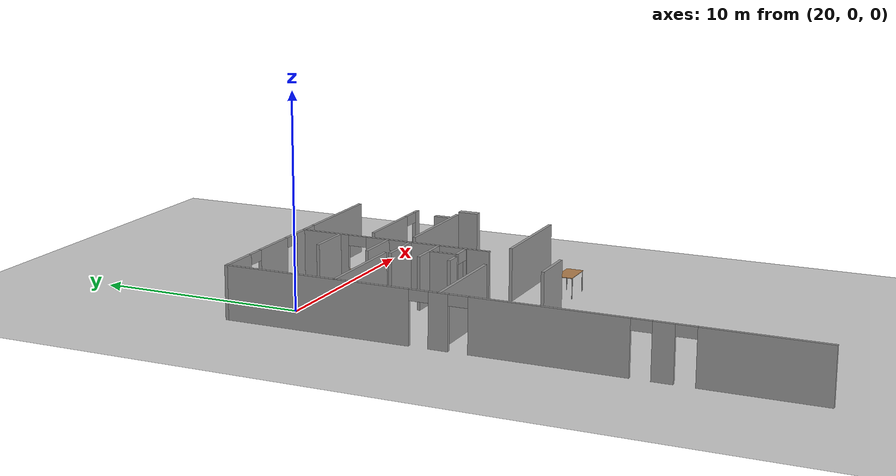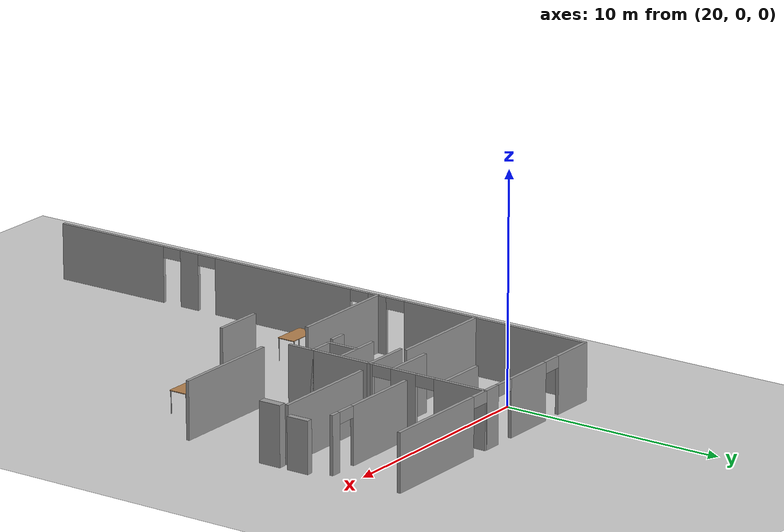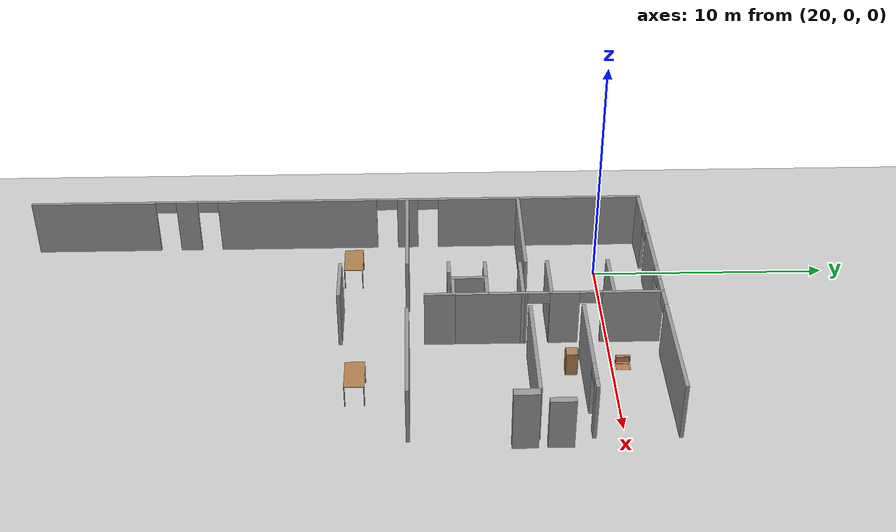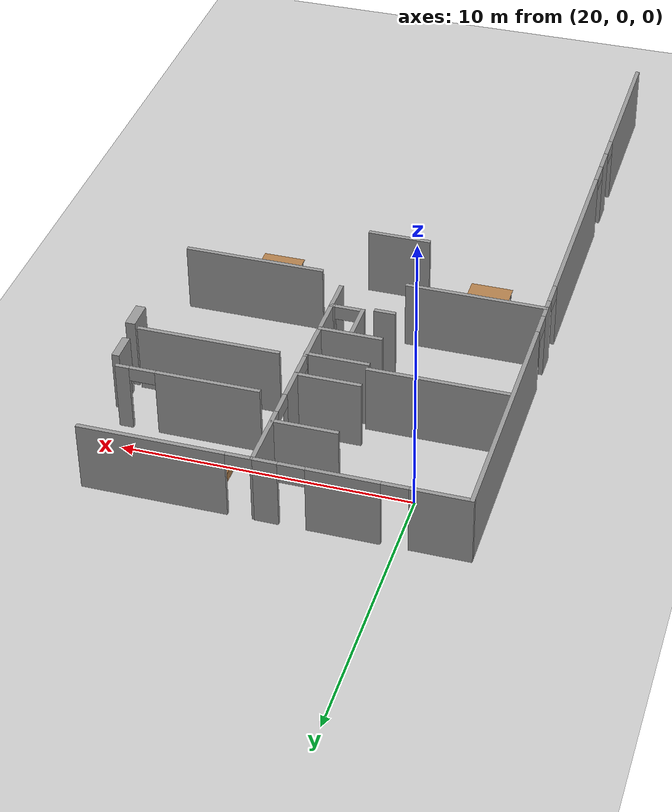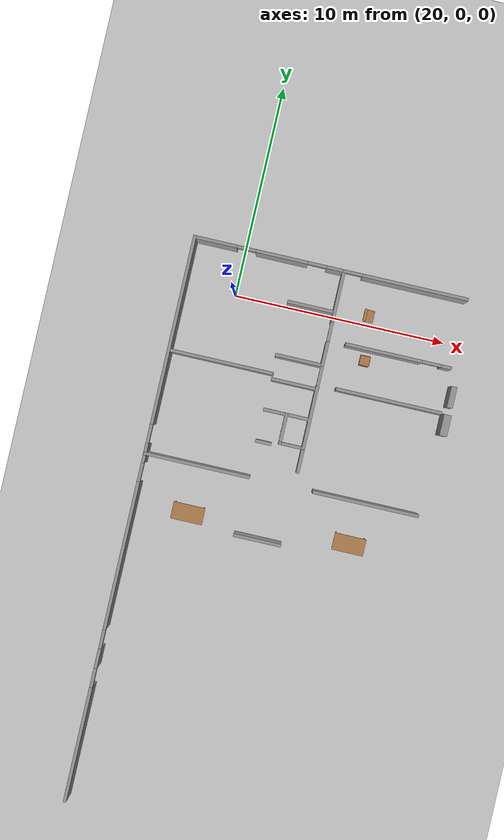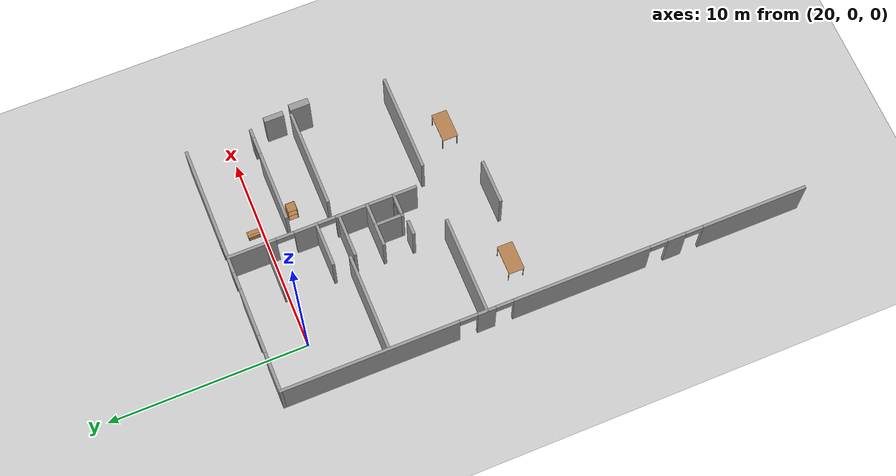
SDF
<sdf version="1.6">
 <world name="default">
  <model name="ground_plane">
   <static>1</static>
   <link name="link">
    <collision name="collision">
     <geometry><plane><normal>0 0 1</normal><size>100 100</size></plane></geometry>
     <surface><friction><ode><mu>100</mu><mu2>50</mu2></ode></friction></surface>
    </collision>
    <visual name="visual">
     <cast_shadows>0</cast_shadows>
     <geometry><plane><normal>0 0 1</normal><size>100 100</size></plane></geometry>
     <material>
      <script><uri>file://media/materials/scripts/gazebo.material</uri><name>Gazebo/Grey</name></script>
     </material>
    </visual>
   </link>
  </model>
  <model name="fin_se1f1.sdf">
   <pose>1.8125 -2.2901 0 0 -0 0</pose>
   <link name="Wall_163">
    <pose>22.2268 4.38596 0 0 -0 3.14159</pose>
    <visual name="Wall_163_Visual_0">
     <pose>-4.00766 0 1.25 0 -0 0</pose>
     <geometry><box><size>4.98467 0.15 2.5</size></box></geometry>
     <material>
      <script><uri>file://media/materials/scripts/gazebo.material</uri><name>Gazebo/Grey</name></script>
      <ambient>1 1 1 1</ambient>
     </material>
     <meta><layer>0</layer></meta>
    </visual>
    <collision name="Wall_163_Collision_0">
     <geometry><box><size>4.98467 0.15 2.5</size></box></geometry>
     <pose>-4.00766 0 1.25 0 -0 0</pose>
    </collision>
    <visual name="Wall_163_Visual_1">
     <pose>-0.2105 0 1.25 0 -0 0</pose>
     <geometry><box><size>0.809654 0.15 2.5</size></box></geometry>
     <material>
      <script><uri>file://media/materials/scripts/gazebo.material</uri><name>Gazebo/Grey</name></script>
      <ambient>1 1 1 1</ambient>
     </material>
     <meta><layer>0</layer></meta>
    </visual>
    <collision name="Wall_163_Collision_1">
     <geometry><box><size>0.809654 0.15 2.5</size></box></geometry>
     <pose>-0.2105 0 1.25 0 -0 0</pose>
    </collision>
    <visual name="Wall_163_Visual_2">
     <pose>2.31375 0 1.25 0 -0 0</pose>
     <geometry><box><size>2.43885 0.15 2.5</size></box></geometry>
     <material>
      <script><uri>file://media/materials/scripts/gazebo.material</uri><name>Gazebo/Grey</name></script>
      <ambient>1 1 1 1</ambient>
     </material>
     <meta><layer>0</layer></meta>
    </visual>
    <collision name="Wall_163_Collision_2">
     <geometry><box><size>2.43885 0.15 2.5</size></box></geometry>
     <pose>2.31375 0 1.25 0 -0 0</pose>
    </collision>
    <visual name="Wall_163_Visual_3">
     <pose>5.46659 0 1.25 0 -0 0</pose>
     <geometry><box><size>2.06682 0.15 2.5</size></box></geometry>
     <material>
      <script><uri>file://media/materials/scripts/gazebo.material</uri><name>Gazebo/Grey</name></script>
      <ambient>1 1 1 1</ambient>
     </material>
     <meta><layer>0</layer></meta>
    </visual>
    <collision name="Wall_163_Collision_3">
     <geometry><box><size>2.06682 0.15 2.5</size></box></geometry>
     <pose>5.46659 0 1.25 0 -0 0</pose>
    </collision>
    <visual name="Wall_163_Visual_4">
     <pose>-1.06533 0 2.25 0 -0 0</pose>
     <geometry><box><size>0.9 0.15 0.5</size></box></geometry>
     <material>
      <script><uri>file://media/materials/scripts/gazebo.material</uri><name>Gazebo/Grey</name></script>
      <ambient>1 1 1 1</ambient>
     </material>
     <meta><layer>0</layer></meta>
    </visual>
    <collision name="Wall_163_Collision_4">
     <geometry><box><size>0.9 0.15 0.5</size></box></geometry>
     <pose>-1.06533 0 2.25 0 -0 0</pose>
    </collision>
    <visual name="Wall_163_Visual_5">
     <pose>0.644327 0 2.25 0 -0 0</pose>
     <geometry><box><size>0.9 0.15 0.5</size></box></geometry>
     <material>
      <script><uri>file://media/materials/scripts/gazebo.material</uri><name>Gazebo/Grey</name></script>
      <ambient>1 1 1 1</ambient>
     </material>
     <meta><layer>0</layer></meta>
    </visual>
    <collision name="Wall_163_Collision_5">
     <geometry><box><size>0.9 0.15 0.5</size></box></geometry>
     <pose>0.644327 0 2.25 0 -0 0</pose>
    </collision>
    <visual name="Wall_163_Visual_6">
     <pose>3.98318 0 2.25 0 -0 0</pose>
     <geometry><box><size>0.9 0.15 0.5</size></box></geometry>
     <material>
      <script><uri>file://media/materials/scripts/gazebo.material</uri><name>Gazebo/Grey</name></script>
      <ambient>1 1 1 1</ambient>
     </material>
     <meta><layer>0</layer></meta>
    </visual>
    <collision name="Wall_163_Collision_6">
     <geometry><box><size>0.9 0.15 0.5</size></box></geometry>
     <pose>3.98318 0 2.25 0 -0 0</pose>
    </collision>
   </link>
   <link name="Wall_164">
    <pose>15.8018 -8.91404 0 0 0 -1.5708</pose>
    <visual name="Wall_164_Visual_0">
     <pose>-8.91283 0 1.25 0 -0 0</pose>
     <geometry><box><size>8.92434 0.15 2.5</size></box></geometry>
     <material>
      <script><uri>file://media/materials/scripts/gazebo.material</uri><name>Gazebo/Grey</name></script>
      <ambient>1 1 1 1</ambient>
     </material>
     <meta><layer>0</layer></meta>
    </visual>
    <collision name="Wall_164_Collision_0">
     <geometry><box><size>8.92434 0.15 2.5</size></box></geometry>
     <pose>-8.91283 0 1.25 0 -0 0</pose>
    </collision>
    <visual name="Wall_164_Visual_1">
     <pose>-3.09555 0 1.25 0 -0 0</pose>
     <geometry><box><size>0.910221 0.15 2.5</size></box></geometry>
     <material>
      <script><uri>file://media/materials/scripts/gazebo.material</uri><name>Gazebo/Grey</name></script>
      <ambient>1 1 1 1</ambient>
     </material>
     <meta><layer>0</layer></meta>
    </visual>
    <collision name="Wall_164_Collision_1">
     <geometry><box><size>0.910221 0.15 2.5</size></box></geometry>
     <pose>-3.09555 0 1.25 0 -0 0</pose>
    </collision>
    <visual name="Wall_164_Visual_2">
     <pose>1.75182 0 1.25 0 -0 0</pose>
     <geometry><box><size>6.98452 0.15 2.5</size></box></geometry>
     <material>
      <script><uri>file://media/materials/scripts/gazebo.material</uri><name>Gazebo/Grey</name></script>
      <ambient>1 1 1 1</ambient>
     </material>
     <meta><layer>0</layer></meta>
    </visual>
    <collision name="Wall_164_Collision_2">
     <geometry><box><size>6.98452 0.15 2.5</size></box></geometry>
     <pose>1.75182 0 1.25 0 -0 0</pose>
    </collision>
    <visual name="Wall_164_Visual_3">
     <pose>6.60925 0 1.25 0 -0 0</pose>
     <geometry><box><size>0.930335 0.15 2.5</size></box></geometry>
     <material>
      <script><uri>file://media/materials/scripts/gazebo.material</uri><name>Gazebo/Grey</name></script>
      <ambient>1 1 1 1</ambient>
     </material>
     <meta><layer>0</layer></meta>
    </visual>
    <collision name="Wall_164_Collision_3">
     <geometry><box><size>0.930335 0.15 2.5</size></box></geometry>
     <pose>6.60925 0 1.25 0 -0 0</pose>
    </collision>
    <visual name="Wall_164_Visual_4">
     <pose>10.6747 0 1.25 0 -0 0</pose>
     <geometry><box><size>5.40058 0.15 2.5</size></box></geometry>
     <material>
      <script><uri>file://media/materials/scripts/gazebo.material</uri><name>Gazebo/Grey</name></script>
      <ambient>1 1 1 1</ambient>
     </material>
     <meta><layer>0</layer></meta>
    </visual>
    <collision name="Wall_164_Collision_4">
     <geometry><box><size>5.40058 0.15 2.5</size></box></geometry>
     <pose>10.6747 0 1.25 0 -0 0</pose>
    </collision>
    <visual name="Wall_164_Visual_5">
     <pose>-4.00066 0 2.25 0 -0 0</pose>
     <geometry><box><size>0.9 0.15 0.5</size></box></geometry>
     <material>
      <script><uri>file://media/materials/scripts/gazebo.material</uri><name>Gazebo/Grey</name></script>
      <ambient>1 1 1 1</ambient>
     </material>
     <meta><layer>0</layer></meta>
    </visual>
    <collision name="Wall_164_Collision_5">
     <geometry><box><size>0.9 0.15 0.5</size></box></geometry>
     <pose>-4.00066 0 2.25 0 -0 0</pose>
    </collision>
    <visual name="Wall_164_Visual_6">
     <pose>-2.19044 0 2.25 0 -0 0</pose>
     <geometry><box><size>0.9 0.15 0.5</size></box></geometry>
     <material>
      <script><uri>file://media/materials/scripts/gazebo.material</uri><name>Gazebo/Grey</name></script>
      <ambient>1 1 1 1</ambient>
     </material>
     <meta><layer>0</layer></meta>
    </visual>
    <collision name="Wall_164_Collision_6">
     <geometry><box><size>0.9 0.15 0.5</size></box></geometry>
     <pose>-2.19044 0 2.25 0 -0 0</pose>
    </collision>
    <visual name="Wall_164_Visual_7">
     <pose>5.69408 0 2.25 0 -0 0</pose>
     <geometry><box><size>0.9 0.15 0.5</size></box></geometry>
     <material>
      <script><uri>file://media/materials/scripts/gazebo.material</uri><name>Gazebo/Grey</name></script>
      <ambient>1 1 1 1</ambient>
     </material>
     <meta><layer>0</layer></meta>
    </visual>
    <collision name="Wall_164_Collision_7">
     <geometry><box><size>0.9 0.15 0.5</size></box></geometry>
     <pose>5.69408 0 2.25 0 -0 0</pose>
    </collision>
    <visual name="Wall_164_Visual_8">
     <pose>7.52442 0 2.25 0 -0 0</pose>
     <geometry><box><size>0.9 0.15 0.5</size></box></geometry>
     <material>
      <script><uri>file://media/materials/scripts/gazebo.material</uri><name>Gazebo/Grey</name></script>
      <ambient>1 1 1 1</ambient>
     </material>
     <meta><layer>0</layer></meta>
    </visual>
    <collision name="Wall_164_Collision_8">
     <geometry><box><size>0.9 0.15 0.5</size></box></geometry>
     <pose>7.52442 0 2.25 0 -0 0</pose>
    </collision>
   </link>
   <link name="Wall_171">
    <pose>22.8525 0.189322 0 0 0 -1.5708</pose>
    <visual name="Wall_171_Visual_0">
     <pose>-3.01682 0 1.25 0 -0 0</pose>
     <geometry><box><size>2.46636 0.15 2.5</size></box></geometry>
     <material>
      <script><uri>file://media/materials/scripts/gazebo.material</uri><name>Gazebo/Grey</name></script>
      <ambient>1 1 1 1</ambient>
     </material>
     <meta><layer>0</layer></meta>
    </visual>
    <collision name="Wall_171_Collision_0">
     <geometry><box><size>2.46636 0.15 2.5</size></box></geometry>
     <pose>-3.01682 0 1.25 0 -0 0</pose>
    </collision>
    <visual name="Wall_171_Visual_1">
     <pose>-0.287734 0 1.25 0 -0 0</pose>
     <geometry><box><size>1.19181 0.15 2.5</size></box></geometry>
     <material>
      <script><uri>file://media/materials/scripts/gazebo.material</uri><name>Gazebo/Grey</name></script>
      <ambient>1 1 1 1</ambient>
     </material>
     <meta><layer>0</layer></meta>
    </visual>
    <collision name="Wall_171_Collision_1">
     <geometry><box><size>1.19181 0.15 2.5</size></box></geometry>
     <pose>-0.287734 0 1.25 0 -0 0</pose>
    </collision>
    <visual name="Wall_171_Visual_2">
     <pose>2.72909 0 1.25 0 -0 0</pose>
     <geometry><box><size>3.04183 0.15 2.5</size></box></geometry>
     <material>
      <script><uri>file://media/materials/scripts/gazebo.material</uri><name>Gazebo/Grey</name></script>
      <ambient>1 1 1 1</ambient>
     </material>
     <meta><layer>0</layer></meta>
    </visual>
    <collision name="Wall_171_Collision_2">
     <geometry><box><size>3.04183 0.15 2.5</size></box></geometry>
     <pose>2.72909 0 1.25 0 -0 0</pose>
    </collision>
    <visual name="Wall_171_Visual_3">
     <pose>-1.33364 0 2.25 0 -0 0</pose>
     <geometry><box><size>0.9 0.15 0.5</size></box></geometry>
     <material>
      <script><uri>file://media/materials/scripts/gazebo.material</uri><name>Gazebo/Grey</name></script>
      <ambient>1 1 1 1</ambient>
     </material>
     <meta><layer>0</layer></meta>
    </visual>
    <collision name="Wall_171_Collision_3">
     <geometry><box><size>0.9 0.15 0.5</size></box></geometry>
     <pose>-1.33364 0 2.25 0 -0 0</pose>
    </collision>
    <visual name="Wall_171_Visual_4">
     <pose>0.758172 0 2.25 0 -0 0</pose>
     <geometry><box><size>0.9 0.15 0.5</size></box></geometry>
     <material>
      <script><uri>file://media/materials/scripts/gazebo.material</uri><name>Gazebo/Grey</name></script>
      <ambient>1 1 1 1</ambient>
     </material>
     <meta><layer>0</layer></meta>
    </visual>
    <collision name="Wall_171_Collision_4">
     <geometry><box><size>0.9 0.15 0.5</size></box></geometry>
     <pose>0.758172 0 2.25 0 -0 0</pose>
    </collision>
   </link>
   <link name="Wall_172">
    <pose>22.3025 -3.98568 0 0 -0 3.14159</pose>
    <visual name="Wall_172_Visual_0">
     <pose>-0.519407 0 1.25 0 -0 0</pose>
     <geometry><box><size>0.211186 0.15 2.5</size></box></geometry>
     <material>
      <script><uri>file://media/materials/scripts/gazebo.material</uri><name>Gazebo/Grey</name></script>
      <ambient>1 1 1 1</ambient>
     </material>
     <meta><layer>0</layer></meta>
    </visual>
    <collision name="Wall_172_Collision_0">
     <geometry><box><size>0.211186 0.15 2.5</size></box></geometry>
     <pose>-0.519407 0 1.25 0 -0 0</pose>
    </collision>
    <visual name="Wall_172_Visual_1">
     <pose>0.555593 0 1.25 0 -0 0</pose>
     <geometry><box><size>0.138814 0.15 2.5</size></box></geometry>
     <material>
      <script><uri>file://media/materials/scripts/gazebo.material</uri><name>Gazebo/Grey</name></script>
      <ambient>1 1 1 1</ambient>
     </material>
     <meta><layer>0</layer></meta>
    </visual>
    <collision name="Wall_172_Collision_1">
     <geometry><box><size>0.138814 0.15 2.5</size></box></geometry>
     <pose>0.555593 0 1.25 0 -0 0</pose>
    </collision>
    <visual name="Wall_172_Visual_2">
     <pose>0.036186 0 2.25 0 -0 0</pose>
     <geometry><box><size>0.9 0.15 0.5</size></box></geometry>
     <material>
      <script><uri>file://media/materials/scripts/gazebo.material</uri><name>Gazebo/Grey</name></script>
      <ambient>1 1 1 1</ambient>
     </material>
     <meta><layer>0</layer></meta>
    </visual>
    <collision name="Wall_172_Collision_2">
     <geometry><box><size>0.9 0.15 0.5</size></box></geometry>
     <pose>0.036186 0 2.25 0 -0 0</pose>
    </collision>
   </link>
   <link name="Wall_173">
    <collision name="Wall_173_Collision">
     <geometry><box><size>1.5 0.15 2.5</size></box></geometry>
     <pose>0 0 1.25 0 -0 0</pose>
    </collision>
    <visual name="Wall_173_Visual">
     <pose>0 0 1.25 0 -0 0</pose>
     <geometry><box><size>1.5 0.15 2.5</size></box></geometry>
     <material>
      <script><uri>file://media/materials/scripts/gazebo.material</uri><name>Gazebo/Grey</name></script>
      <ambient>1 1 1 1</ambient>
     </material>
     <meta><layer>0</layer></meta>
    </visual>
    <pose>21.7525 -3.31068 0 0 -0 1.5708</pose>
   </link>
   <link name="Wall_178">
    <collision name="Wall_178_Collision">
     <geometry><box><size>2.25 0.15 2.5</size></box></geometry>
     <pose>0 0 1.25 0 -0 0</pose>
    </collision>
    <visual name="Wall_178_Visual">
     <pose>0 0 1.25 0 -0 0</pose>
     <geometry><box><size>2.25 0.15 2.5</size></box></geometry>
     <material>
      <script><uri>file://media/materials/scripts/gazebo.material</uri><name>Gazebo/Grey</name></script>
      <ambient>1 1 1 1</ambient>
     </material>
     <meta><layer>0</layer></meta>
    </visual>
    <pose>21.751 2.44334 0 0 -0 0</pose>
   </link>
   <link name="Wall_180">
    <collision name="Wall_180_Collision">
     <geometry><box><size>2.25 0.15 2.5</size></box></geometry>
     <pose>0 0 1.25 0 -0 0</pose>
    </collision>
    <visual name="Wall_180_Visual">
     <pose>0 0 1.25 0 -0 0</pose>
     <geometry><box><size>2.25 0.15 2.5</size></box></geometry>
     <material>
      <script><uri>file://media/materials/scripts/gazebo.material</uri><name>Gazebo/Grey</name></script>
      <ambient>1 1 1 1</ambient>
     </material>
     <meta><layer>0</layer></meta>
    </visual>
    <pose>21.751 -0.065056 0 0 -0 0</pose>
   </link>
   <link name="Wall_182">
    <collision name="Wall_182_Collision">
     <geometry><box><size>2.25 0.15 2.5</size></box></geometry>
     <pose>0 0 1.25 0 -0 0</pose>
    </collision>
    <visual name="Wall_182_Visual">
     <pose>0 0 1.25 0 -0 0</pose>
     <geometry><box><size>2.25 0.15 2.5</size></box></geometry>
     <material>
      <script><uri>file://media/materials/scripts/gazebo.material</uri><name>Gazebo/Grey</name></script>
      <ambient>1 1 1 1</ambient>
     </material>
     <meta><layer>0</layer></meta>
    </visual>
    <pose>21.7816 -2.63463 0 0 -0 0</pose>
   </link>
   <link name="Wall_184">
    <collision name="Wall_184_Collision">
     <geometry><box><size>2.25 0.15 2.5</size></box></geometry>
     <pose>0 0 1.25 0 -0 0</pose>
    </collision>
    <visual name="Wall_184_Visual">
     <pose>0 0 1.25 0 -0 0</pose>
     <geometry><box><size>2.25 0.15 2.5</size></box></geometry>
     <material>
      <script><uri>file://media/materials/scripts/gazebo.material</uri><name>Gazebo/Grey</name></script>
      <ambient>1 1 1 1</ambient>
     </material>
     <meta><layer>0</layer></meta>
    </visual>
    <pose>21.8132 -1.19202 0 0 -0 3.14159</pose>
   </link>
   <link name="Wall_186">
    <collision name="Wall_186_Collision">
     <geometry><box><size>0.75 0.15 2.5</size></box></geometry>
     <pose>0 0 1.25 0 -0 0</pose>
    </collision>
    <visual name="Wall_186_Visual">
     <pose>0 0 1.25 0 -0 0</pose>
     <geometry><box><size>0.75 0.15 2.5</size></box></geometry>
     <material>
      <script><uri>file://media/materials/scripts/gazebo.material</uri><name>Gazebo/Grey</name></script>
      <ambient>1 1 1 1</ambient>
     </material>
     <meta><layer>0</layer></meta>
    </visual>
    <pose>21.0031 -4.12868 0 0 -0 3.14159</pose>
   </link>
   <link name="Wall_188">
    <collision name="Wall_188_Collision">
     <geometry><box><size>1.25 0.15 2.5</size></box></geometry>
     <pose>0 0 1.25 0 -0 0</pose>
    </collision>
    <visual name="Wall_188_Visual">
     <pose>0 0 1.25 0 -0 0</pose>
     <geometry><box><size>1.25 0.15 2.5</size></box></geometry>
     <material>
      <script><uri>file://media/materials/scripts/gazebo.material</uri><name>Gazebo/Grey</name></script>
      <ambient>1 1 1 1</ambient>
     </material>
     <meta><layer>0</layer></meta>
    </visual>
    <pose>22.8525 -4.53568 0 0 0 -1.5708</pose>
   </link>
   <link name="Wall_190">
    <collision name="Wall_190_Collision">
     <geometry><box><size>5 0.15 2.5</size></box></geometry>
     <pose>0 0 1.25 0 -0 0</pose>
    </collision>
    <visual name="Wall_190_Visual">
     <pose>0 0 1.25 0 -0 0</pose>
     <geometry><box><size>5 0.15 2.5</size></box></geometry>
     <material>
      <script><uri>file://media/materials/scripts/gazebo.material</uri><name>Gazebo/Grey</name></script>
      <ambient>1 1 1 1</ambient>
     </material>
     <meta><layer>0</layer></meta>
    </visual>
    <pose>18.2357 -0.947296 0 0 -0 3.14159</pose>
   </link>
   <link name="Wall_192">
    <pose>26.1753 1.13284 0 0 -0 0</pose>
    <visual name="Wall_192_Visual_0">
     <pose>-0.694062 0 1.25 0 -0 0</pose>
     <geometry><box><size>3.61188 0.15 2.5</size></box></geometry>
     <material>
      <script><uri>file://media/materials/scripts/gazebo.material</uri><name>Gazebo/Grey</name></script>
      <ambient>1 1 1 1</ambient>
     </material>
     <meta><layer>0</layer></meta>
    </visual>
    <collision name="Wall_192_Collision_0">
     <geometry><box><size>3.61188 0.15 2.5</size></box></geometry>
     <pose>-0.694062 0 1.25 0 -0 0</pose>
    </collision>
    <visual name="Wall_192_Visual_1">
     <pose>2.25594 0 1.25 0 -0 0</pose>
     <geometry><box><size>0.488124 0.15 2.5</size></box></geometry>
     <material>
      <script><uri>file://media/materials/scripts/gazebo.material</uri><name>Gazebo/Grey</name></script>
      <ambient>1 1 1 1</ambient>
     </material>
     <meta><layer>0</layer></meta>
    </visual>
    <collision name="Wall_192_Collision_1">
     <geometry><box><size>0.488124 0.15 2.5</size></box></geometry>
     <pose>2.25594 0 1.25 0 -0 0</pose>
    </collision>
    <visual name="Wall_192_Visual_2">
     <pose>1.56188 0 2.25 0 -0 0</pose>
     <geometry><box><size>0.9 0.15 0.5</size></box></geometry>
     <material>
      <script><uri>file://media/materials/scripts/gazebo.material</uri><name>Gazebo/Grey</name></script>
      <ambient>1 1 1 1</ambient>
     </material>
     <meta><layer>0</layer></meta>
    </visual>
    <collision name="Wall_192_Collision_2">
     <geometry><box><size>0.9 0.15 0.5</size></box></geometry>
     <pose>1.56188 0 2.25 0 -0 0</pose>
    </collision>
   </link>
   <link name="Wall_194">
    <collision name="Wall_194_Collision">
     <geometry><box><size>5 0.15 2.5</size></box></geometry>
     <pose>0 0 1.25 0 -0 0</pose>
    </collision>
    <visual name="Wall_194_Visual">
     <pose>0 0 1.25 0 -0 0</pose>
     <geometry><box><size>5 0.15 2.5</size></box></geometry>
     <material>
      <script><uri>file://media/materials/scripts/gazebo.material</uri><name>Gazebo/Grey</name></script>
      <ambient>1 1 1 1</ambient>
     </material>
     <meta><layer>0</layer></meta>
    </visual>
    <pose>26.2059 -0.977886 0 0 -0 0</pose>
   </link>
   <link name="Wall_196">
    <collision name="Wall_196_Collision">
     <geometry><box><size>5 0.15 2.5</size></box></geometry>
     <pose>0 0 1.25 0 -0 0</pose>
    </collision>
    <visual name="Wall_196_Visual">
     <pose>0 0 1.25 0 -0 0</pose>
     <geometry><box><size>5 0.15 2.5</size></box></geometry>
     <material>
      <script><uri>file://media/materials/scripts/gazebo.material</uri><name>Gazebo/Grey</name></script>
      <ambient>1 1 1 1</ambient>
     </material>
     <meta><layer>0</layer></meta>
    </visual>
    <pose>26.2233 -5.83852 0 0 -0 0</pose>
   </link>
   <link name="Wall_198">
    <collision name="Wall_198_Collision">
     <geometry><box><size>5 0.15 2.5</size></box></geometry>
     <pose>0 0 1.25 0 -0 0</pose>
    </collision>
    <visual name="Wall_198_Visual">
     <pose>0 0 1.25 0 -0 0</pose>
     <geometry><box><size>5 0.15 2.5</size></box></geometry>
     <material>
      <script><uri>file://media/materials/scripts/gazebo.material</uri><name>Gazebo/Grey</name></script>
      <ambient>1 1 1 1</ambient>
     </material>
     <meta><layer>0</layer></meta>
    </visual>
    <pose>18.2432 -5.83852 0 0 -0 0</pose>
   </link>
   <link name="Wall_201">
    <collision name="Wall_201_Collision">
     <geometry><box><size>2.25 0.15 2.5</size></box></geometry>
     <pose>0 0 1.25 0 -0 0</pose>
    </collision>
    <visual name="Wall_201_Visual">
     <pose>0 0 1.25 0 -0 0</pose>
     <geometry><box><size>2.25 0.15 2.5</size></box></geometry>
     <material>
      <script><uri>file://media/materials/scripts/gazebo.material</uri><name>Gazebo/Grey</name></script>
      <ambient>1 1 1 1</ambient>
     </material>
     <meta><layer>0</layer></meta>
    </visual>
    <pose>21.736 -8.57834 0 0 -0 0</pose>
   </link>
   <static>1</static>
  </model>
  <model name="table_13">
   <static>1</static>
   <link name="link">
    <collision name="surface">
     <pose>0 0 1 0 -0 0</pose>
     <geometry><box><size>1.5 0.8 0.03</size></box></geometry>
     <surface><friction><ode><mu>0.6</mu><mu2>0.6</mu2></ode></friction></surface>
    </collision>
    <visual name="visual1">
     <pose>0 0 1 0 -0 0</pose>
     <geometry><box><size>1.5 0.8 0.03</size></box></geometry>
     <material>
      <script><uri>file://media/materials/scripts/gazebo.material</uri><name>Gazebo/Wood</name></script>
     </material>
    </visual>
    <collision name="front_left_leg">
     <pose>0.68 0.38 0.5 0 -0 0</pose>
     <geometry><cylinder><radius>0.02</radius><length>1</length></cylinder></geometry>
    </collision>
    <visual name="front_left_leg">
     <pose>0.68 0.38 0.5 0 -0 0</pose>
     <geometry><cylinder><radius>0.02</radius><length>1</length></cylinder></geometry>
     <material>
      <script><uri>file://media/materials/scripts/gazebo.material</uri><name>Gazebo/Grey</name></script>
     </material>
    </visual>
    <collision name="front_right_leg">
     <pose>0.68 -0.38 0.5 0 -0 0</pose>
     <geometry><cylinder><radius>0.02</radius><length>1</length></cylinder></geometry>
    </collision>
    <visual name="front_right_leg">
     <pose>0.68 -0.38 0.5 0 -0 0</pose>
     <geometry><cylinder><radius>0.02</radius><length>1</length></cylinder></geometry>
     <material>
      <script><uri>file://media/materials/scripts/gazebo.material</uri><name>Gazebo/Grey</name></script>
     </material>
    </visual>
    <collision name="back_right_leg">
     <pose>-0.68 -0.38 0.5 0 -0 0</pose>
     <geometry><cylinder><radius>0.02</radius><length>1</length></cylinder></geometry>
    </collision>
    <visual name="back_right_leg">
     <pose>-0.68 -0.38 0.5 0 -0 0</pose>
     <geometry><cylinder><radius>0.02</radius><length>1</length></cylinder></geometry>
     <material>
      <script><uri>file://media/materials/scripts/gazebo.material</uri><name>Gazebo/Grey</name></script>
     </material>
    </visual>
    <collision name="back_left_leg">
     <pose>-0.68 0.38 0.5 0 -0 0</pose>
     <geometry><cylinder><radius>0.02</radius><length>1</length></cylinder></geometry>
    </collision>
    <visual name="back_left_leg">
     <pose>-0.68 0.38 0.5 0 -0 0</pose>
     <geometry><cylinder><radius>0.02</radius><length>1</length></cylinder></geometry>
     <material>
      <script><uri>file://media/materials/scripts/gazebo.material</uri><name>Gazebo/Grey</name></script>
     </material>
    </visual>
   </link>
   <pose>20.1153 -10.4407 0 0 -0 0</pose>
  </model>
  <model name="table_14">
   <static>1</static>
   <link name="link">
    <collision name="surface">
     <pose>0 0 1 0 -0 0</pose>
     <geometry><box><size>1.5 0.8 0.03</size></box></geometry>
     <surface><friction><ode><mu>0.6</mu><mu2>0.6</mu2></ode></friction></surface>
    </collision>
    <visual name="visual1">
     <pose>0 0 1 0 -0 0</pose>
     <geometry><box><size>1.5 0.8 0.03</size></box></geometry>
     <material>
      <script><uri>file://media/materials/scripts/gazebo.material</uri><name>Gazebo/Wood</name></script>
     </material>
    </visual>
    <collision name="front_left_leg">
     <pose>0.68 0.38 0.5 0 -0 0</pose>
     <geometry><cylinder><radius>0.02</radius><length>1</length></cylinder></geometry>
    </collision>
    <visual name="front_left_leg">
     <pose>0.68 0.38 0.5 0 -0 0</pose>
     <geometry><cylinder><radius>0.02</radius><length>1</length></cylinder></geometry>
     <material>
      <script><uri>file://media/materials/scripts/gazebo.material</uri><name>Gazebo/Grey</name></script>
     </material>
    </visual>
    <collision name="front_right_leg">
     <pose>0.68 -0.38 0.5 0 -0 0</pose>
     <geometry><cylinder><radius>0.02</radius><length>1</length></cylinder></geometry>
    </collision>
    <visual name="front_right_leg">
     <pose>0.68 -0.38 0.5 0 -0 0</pose>
     <geometry><cylinder><radius>0.02</radius><length>1</length></cylinder></geometry>
     <material>
      <script><uri>file://media/materials/scripts/gazebo.material</uri><name>Gazebo/Grey</name></script>
     </material>
    </visual>
    <collision name="back_right_leg">
     <pose>-0.68 -0.38 0.5 0 -0 0</pose>
     <geometry><cylinder><radius>0.02</radius><length>1</length></cylinder></geometry>
    </collision>
    <visual name="back_right_leg">
     <pose>-0.68 -0.38 0.5 0 -0 0</pose>
     <geometry><cylinder><radius>0.02</radius><length>1</length></cylinder></geometry>
     <material>
      <script><uri>file://media/materials/scripts/gazebo.material</uri><name>Gazebo/Grey</name></script>
     </material>
    </visual>
    <collision name="back_left_leg">
     <pose>-0.68 0.38 0.5 0 -0 0</pose>
     <geometry><cylinder><radius>0.02</radius><length>1</length></cylinder></geometry>
    </collision>
    <visual name="back_left_leg">
     <pose>-0.68 0.38 0.5 0 -0 0</pose>
     <geometry><cylinder><radius>0.02</radius><length>1</length></cylinder></geometry>
     <material>
      <script><uri>file://media/materials/scripts/gazebo.material</uri><name>Gazebo/Grey</name></script>
     </material>
    </visual>
   </link>
   <pose>27.7645 -10.1765 0 0 -0 0</pose>
  </model>
  <model name="wooden_case">
   <link name="base">
    <pose>0 0 0.024 0 -0 0</pose>
    <inertial>
     <pose>-0.022184 0 0.171592 0 -0 0</pose>
     <mass>3.96264</mass>
     <inertia>
      <ixx>0.213536</ixx>
      <ixy>0</ixy>
      <ixz>0.000779377</ixz>
      <iyy>0.0708943</iyy>
      <iyz>0</iyz>
      <izz>0.154604</izz>
     </inertia>
    </inertial>
    <collision name="collision_back">
     <pose>-0.053975 0 0.1778 0 -0 0</pose>
     <geometry><box><size>0.01905 0.5461 0.3175</size></box></geometry>
     <surface>
      <contact>
       <poissons_ratio>0.347</poissons_ratio>
       <elastic_modulus>8.8e+09</elastic_modulus>
       <ode><kp>100000</kp><kd>100</kd><max_vel>100</max_vel><min_depth>0.001</min_depth></ode>
      </contact>
      <friction>
       <torsional>
        <coefficient>1</coefficient>
        <use_patch_radius>0</use_patch_radius>
        <surface_radius>0.01</surface_radius>
       </torsional>
      </friction>
     </surface>
    </collision>
    <visual name="visual_back">
     <pose>-0.053975 0 0.1778 0 -0 0</pose>
     <geometry><box><size>0.01905 0.5461 0.3175</size></box></geometry>
     <material>
      <script><uri>file://media/materials/scripts/gazebo.material</uri><name>Gazebo/Wood</name></script>
     </material>
    </visual>
    <collision name="collision_bottom">
     <pose>0 0 0.009525 0 -0 0</pose>
     <geometry><box><size>0.127 0.5842 0.01905</size></box></geometry>
     <surface>
      <contact>
       <poissons_ratio>0.347</poissons_ratio>
       <elastic_modulus>8.8e+09</elastic_modulus>
       <ode><kp>100000</kp><kd>100</kd><max_vel>100</max_vel><min_depth>0.001</min_depth></ode>
      </contact>
      <friction>
       <torsional>
        <coefficient>1</coefficient>
        <use_patch_radius>0</use_patch_radius>
        <surface_radius>0.01</surface_radius>
       </torsional>
      </friction>
     </surface>
    </collision>
    <visual name="visual_bottom">
     <pose>0 0 0.009525 0 -0 0</pose>
     <geometry><box><size>0.127 0.5842 0.01905</size></box></geometry>
     <material>
      <script><uri>file://media/materials/scripts/gazebo.material</uri><name>Gazebo/Wood</name></script>
     </material>
    </visual>
    <collision name="collision_top">
     <pose>0 0 0.346075 0 -0 0</pose>
     <geometry><box><size>0.127 0.5842 0.01905</size></box></geometry>
     <surface>
      <contact>
       <poissons_ratio>0.347</poissons_ratio>
       <elastic_modulus>8.8e+09</elastic_modulus>
       <ode><kp>100000</kp><kd>100</kd><max_vel>100</max_vel><min_depth>0.001</min_depth></ode>
      </contact>
      <friction>
       <torsional>
        <coefficient>1</coefficient>
        <use_patch_radius>0</use_patch_radius>
        <surface_radius>0.01</surface_radius>
       </torsional>
      </friction>
     </surface>
    </collision>
    <visual name="visual_top">
     <pose>0 0 0.346075 0 -0 0</pose>
     <geometry><box><size>0.127 0.5842 0.01905</size></box></geometry>
     <material>
      <script><uri>file://media/materials/scripts/gazebo.material</uri><name>Gazebo/Wood</name></script>
     </material>
    </visual>
    <collision name="collision_left">
     <pose>0 -0.282575 0.1778 0 -0 0</pose>
     <geometry><box><size>0.127 0.01905 0.3175</size></box></geometry>
     <surface>
      <contact>
       <poissons_ratio>0.347</poissons_ratio>
       <elastic_modulus>8.8e+09</elastic_modulus>
       <ode><kp>100000</kp><kd>100</kd><max_vel>100</max_vel><min_depth>0.001</min_depth></ode>
      </contact>
      <friction>
       <torsional>
        <coefficient>1</coefficient>
        <use_patch_radius>0</use_patch_radius>
        <surface_radius>0.01</surface_radius>
       </torsional>
      </friction>
     </surface>
    </collision>
    <visual name="visual_left">
     <pose>0 -0.282575 0.1778 0 -0 0</pose>
     <geometry><box><size>0.127 0.01905 0.3175</size></box></geometry>
     <material>
      <script><uri>file://media/materials/scripts/gazebo.material</uri><name>Gazebo/Wood</name></script>
     </material>
    </visual>
    <collision name="collision_right">
     <pose>0 0.282575 0.1778 0 -0 0</pose>
     <geometry><box><size>0.127 0.01905 0.3175</size></box></geometry>
     <surface>
      <contact>
       <poissons_ratio>0.347</poissons_ratio>
       <elastic_modulus>8.8e+09</elastic_modulus>
       <ode><kp>100000</kp><kd>100</kd><max_vel>100</max_vel><min_depth>0.001</min_depth></ode>
      </contact>
      <friction>
       <torsional>
        <coefficient>1</coefficient>
        <use_patch_radius>0</use_patch_radius>
        <surface_radius>0.01</surface_radius>
       </torsional>
      </friction>
     </surface>
    </collision>
    <visual name="visual_right">
     <pose>0 0.282575 0.1778 0 -0 0</pose>
     <geometry><box><size>0.127 0.01905 0.3175</size></box></geometry>
     <material>
      <script><uri>file://media/materials/scripts/gazebo.material</uri><name>Gazebo/Wood</name></script>
     </material>
    </visual>
    <collision name="collision_block_left">
     <pose>0.0095 -0.2151 -0.012 0 -0 0</pose>
     <geometry><box><size>0.108 0.05 0.024</size></box></geometry>
     <surface>
      <contact>
       <poissons_ratio>0.347</poissons_ratio>
       <elastic_modulus>8.8e+09</elastic_modulus>
       <ode><kp>100000</kp><kd>100</kd><max_vel>100</max_vel><min_depth>0.001</min_depth></ode>
      </contact>
      <friction>
       <torsional>
        <coefficient>1</coefficient>
        <use_patch_radius>0</use_patch_radius>
        <surface_radius>0.01</surface_radius>
       </torsional>
      </friction>
     </surface>
    </collision>
    <visual name="visual_block_left">
     <pose>0.0095 -0.2151 -0.012 0 -0 0</pose>
     <geometry><box><size>0.108 0.05 0.024</size></box></geometry>
     <material>
      <script><uri>file://media/materials/scripts/gazebo.material</uri><name>Gazebo/Wood</name></script>
     </material>
    </visual>
    <collision name="collision_block_right">
     <pose>0.0095 0.2151 -0.012 0 -0 0</pose>
     <geometry><box><size>0.108 0.05 0.024</size></box></geometry>
     <surface>
      <contact>
       <poissons_ratio>0.347</poissons_ratio>
       <elastic_modulus>8.8e+09</elastic_modulus>
       <ode><kp>100000</kp><kd>100</kd><max_vel>100</max_vel><min_depth>0.001</min_depth></ode>
      </contact>
      <friction>
       <torsional>
        <coefficient>1</coefficient>
        <use_patch_radius>0</use_patch_radius>
        <surface_radius>0.01</surface_radius>
       </torsional>
      </friction>
     </surface>
    </collision>
    <visual name="visual_block_right">
     <pose>0.0095 0.2151 -0.012 0 -0 0</pose>
     <geometry><box><size>0.108 0.05 0.024</size></box></geometry>
     <material>
      <script><uri>file://media/materials/scripts/gazebo.material</uri><name>Gazebo/Wood</name></script>
     </material>
    </visual>
   </link>
   <link name="lid">
    <pose>0.243775 0 0.009525 0 -0 0</pose>
    <inertial>
     <mass>1.97874</mass>
     <inertia>
      <ixx>0.0563367</ixx>
      <ixy>0</ixy>
      <ixz>0</ixz>
      <iyy>0.020911</iyy>
      <iyz>0</iyz>
      <izz>0.0771281</izz>
     </inertia>
    </inertial>
    <collision name="collision">
     <geometry><box><size>0.3556 0.5842 0.01905</size></box></geometry>
     <surface>
      <contact>
       <poissons_ratio>0.347</poissons_ratio>
       <elastic_modulus>8.8e+09</elastic_modulus>
       <ode><kp>100000</kp><kd>100</kd><max_vel>100</max_vel><min_depth>0.001</min_depth></ode>
      </contact>
      <friction>
       <torsional>
        <coefficient>1</coefficient>
        <use_patch_radius>0</use_patch_radius>
        <surface_radius>0.01</surface_radius>
       </torsional>
      </friction>
     </surface>
    </collision>
    <visual name="visual">
     <geometry><box><size>0.3556 0.5842 0.01905</size></box></geometry>
     <material>
      <script><uri>file://media/materials/scripts/gazebo.material</uri><name>Gazebo/Wood</name></script>
     </material>
    </visual>
    <visual name="tee_nut_1">
     <pose>0.122 -0.216 0 0 -0 0</pose>
     <geometry><cylinder><radius>0.00635</radius><length>0.0192405</length></cylinder></geometry>
     <material>
      <script><uri>file://media/materials/scripts/gazebo.material</uri><name>Gazebo/Grey</name></script>
     </material>
    </visual>
    <visual name="tee_nut_2">
     <pose>0.122 -0.088 0 0 -0 0</pose>
     <geometry><cylinder><radius>0.00635</radius><length>0.0192405</length></cylinder></geometry>
     <material>
      <script><uri>file://media/materials/scripts/gazebo.material</uri><name>Gazebo/Grey</name></script>
     </material>
    </visual>
    <visual name="tee_nut_3">
     <pose>0.122 0.088 0 0 -0 0</pose>
     <geometry><cylinder><radius>0.00635</radius><length>0.0192405</length></cylinder></geometry>
     <material>
      <script><uri>file://media/materials/scripts/gazebo.material</uri><name>Gazebo/Grey</name></script>
     </material>
    </visual>
    <visual name="tee_nut_4">
     <pose>0.122 0.216 0 0 -0 0</pose>
     <geometry><cylinder><radius>0.00635</radius><length>0.0192405</length></cylinder></geometry>
     <material>
      <script><uri>file://media/materials/scripts/gazebo.material</uri><name>Gazebo/Grey</name></script>
     </material>
    </visual>
   </link>
   <joint name="lid_hinge" type="revolute">
    <pose>-0.1778 0 0.01905 0 -0 0</pose>
    <parent>base</parent>
    <child>lid</child>
    <axis>
     <xyz>0 1 0</xyz>
     <limit><upper>0.523599</upper><lower>-1.5708</lower></limit>
     <use_parent_model_frame>0</use_parent_model_frame>
     <dynamics><spring_reference>0</spring_reference><spring_stiffness>0</spring_stiffness></dynamics>
    </axis>
   </joint>
   <pose>26.129 0.463112 -0.001057 0 -0.000429 0</pose>
  </model>
  <model name="cabinet">
   <static>1</static>
   <link name="cabinet_bottom_plate">
    <inertial>
     <pose>0 0 -1 0 -0 0</pose>
     <inertia><ixx>2.05</ixx><ixy>0</ixy><ixz>0</ixz><iyy>2.05</iyy><iyz>0</iyz><izz>2.05</izz></inertia>
     <mass>25</mass>
    </inertial>
    <collision name="cabinet_bottom_plate_geom">
     <pose>0 0 0.01 0 -0 0</pose>
     <geometry><box><size>0.45 0.45 0.02</size></box></geometry>
    </collision>
    <visual name="cabinet_bottom_plate_geom_visual">
     <pose>0 0 0.01 0 -0 0</pose>
     <geometry><box><size>0.45 0.45 0.02</size></box></geometry>
     <material>
      <script><uri>file://media/materials/scripts/gazebo.material</uri><name>Gazebo/Wood</name></script>
     </material>
    </visual>
    <collision name="cabinet_bottom_plate_geom_cabinet_back_plate">
     <pose>0.235 0 0.51 0 -0 0</pose>
     <geometry><box><size>0.02 0.45 1.02</size></box></geometry>
    </collision>
    <visual name="cabinet_bottom_plate_geom_cabinet_back_plate_visual">
     <pose>0.235 0 0.51 0 -0 0</pose>
     <geometry><box><size>0.02 0.45 1.02</size></box></geometry>
     <material>
      <script><uri>file://media/materials/scripts/gazebo.material</uri><name>Gazebo/Wood</name></script>
     </material>
    </visual>
    <collision name="cabinet_bottom_plate_geom_cabinet_left_plate">
     <pose>0 0.235 0.51 0 -0 0</pose>
     <geometry><box><size>0.45 0.02 1.02</size></box></geometry>
    </collision>
    <visual name="cabinet_bottom_plate_geom_cabinet_left_plate_visual">
     <pose>0 0.235 0.51 0 -0 0</pose>
     <geometry><box><size>0.45 0.02 1.02</size></box></geometry>
     <material>
      <script><uri>file://media/materials/scripts/gazebo.material</uri><name>Gazebo/Wood</name></script>
     </material>
    </visual>
    <collision name="cabinet_bottom_plate_geom_cabinet_middle_plate">
     <pose>0 0 0.51 0 -0 0</pose>
     <geometry><box><size>0.45 0.45 0.02</size></box></geometry>
    </collision>
    <visual name="cabinet_bottom_plate_geom_cabinet_middle_plate_visual">
     <pose>0 0 0.51 0 -0 0</pose>
     <geometry><box><size>0.45 0.45 0.02</size></box></geometry>
     <material>
      <script><uri>file://media/materials/scripts/gazebo.material</uri><name>Gazebo/Wood</name></script>
     </material>
    </visual>
    <collision name="cabinet_bottom_plate_geom_cabinet_right_plate">
     <pose>0 -0.235 0.51 0 -0 0</pose>
     <geometry><box><size>0.45 0.02 1.02</size></box></geometry>
    </collision>
    <visual name="cabinet_bottom_plate_geom_cabinet_right_plate_visual">
     <pose>0 -0.235 0.51 0 -0 0</pose>
     <geometry><box><size>0.45 0.02 1.02</size></box></geometry>
     <material>
      <script><uri>file://media/materials/scripts/gazebo.material</uri><name>Gazebo/Wood</name></script>
     </material>
    </visual>
    <collision name="cabinet_bottom_plate_geom_cabinet_top_plate">
     <pose>0 0 1.01 0 -0 0</pose>
     <geometry><box><size>0.45 0.45 0.02</size></box></geometry>
    </collision>
    <visual name="cabinet_bottom_plate_geom_cabinet_top_plate_visual">
     <pose>0 0 1.01 0 -0 0</pose>
     <geometry><box><size>0.45 0.45 0.02</size></box></geometry>
     <material>
      <script><uri>file://media/materials/scripts/gazebo.material</uri><name>Gazebo/Wood</name></script>
     </material>
    </visual>
   </link>
   <pose>26.5603 -1.66057 0 0 -0 0</pose>
  </model>
  <model name="unit_box_10">
   <pose>30.8235 -2.4436 1.1145 0 -0 8.1e-05</pose>
   <link name="link">
    <inertial>
     <mass>1</mass>
     <inertia>
      <ixx>0.166667</ixx>
      <ixy>0</ixy>
      <ixz>0</ixz>
      <iyy>0.166667</iyy>
      <iyz>0</iyz>
      <izz>0.166667</izz>
     </inertia>
    </inertial>
    <collision name="collision"><geometry><box><size>0.268539 1 2.22901</size></box></geometry></collision>
    <visual name="visual">
     <geometry><box><size>0.268539 1 2.22901</size></box></geometry>
     <material>
      <script><name>Gazebo/Grey</name><uri>file://media/materials/scripts/gazebo.material</uri></script>
     </material>
    </visual>
   </link>
  </model>
  <model name="unit_box_11">
   <pose>30.7927 -3.78216 1.29892 0 -0 6e-05</pose>
   <link name="link">
    <inertial>
     <mass>1</mass>
     <inertia>
      <ixx>0.166667</ixx>
      <ixy>0</ixy>
      <ixz>0</ixz>
      <iyy>0.166667</iyy>
      <iyz>0</iyz>
      <izz>0.166667</izz>
     </inertia>
    </inertial>
    <collision name="collision"><geometry><box><size>0.351481 1 2.59784</size></box></geometry></collision>
    <visual name="visual">
     <geometry><box><size>0.351481 1 2.59784</size></box></geometry>
     <material>
      <script><name>Gazebo/Grey</name><uri>file://media/materials/scripts/gazebo.material</uri></script>
     </material>
    </visual>
   </link>
  </model>
 </world>
</sdf>
